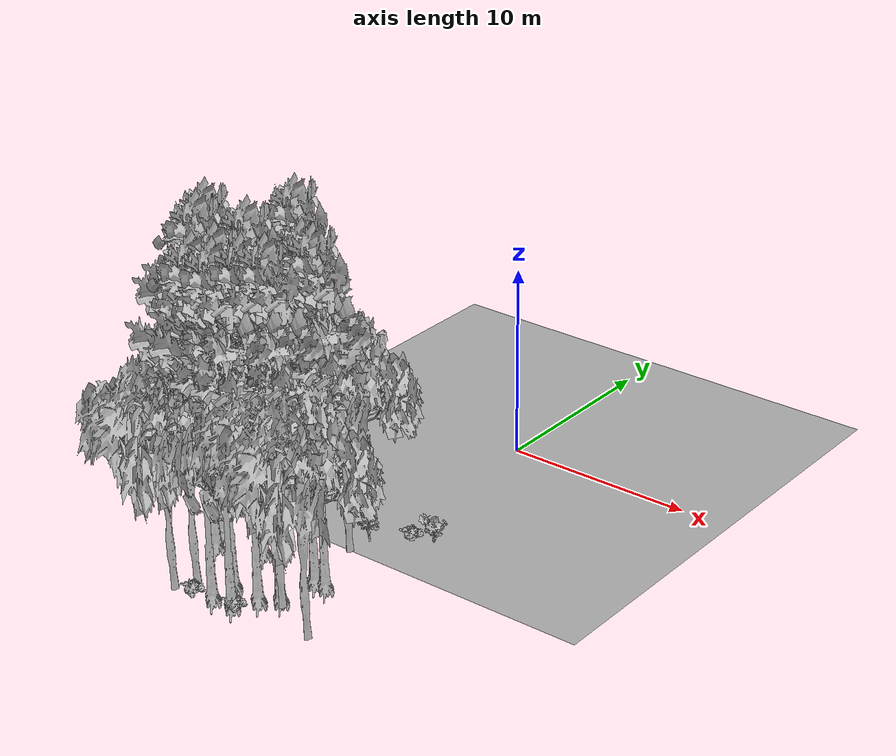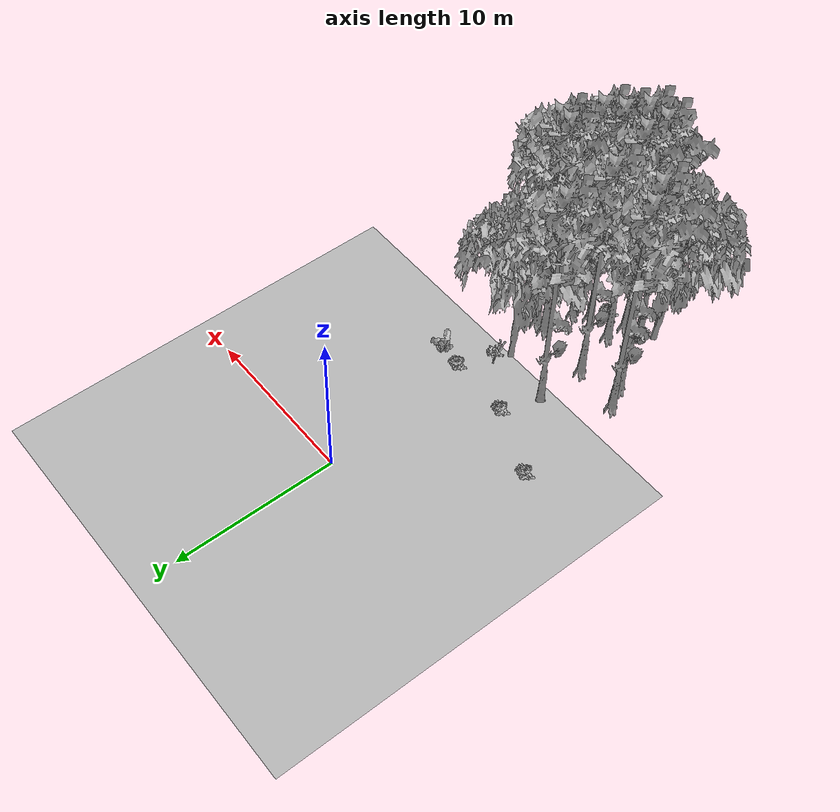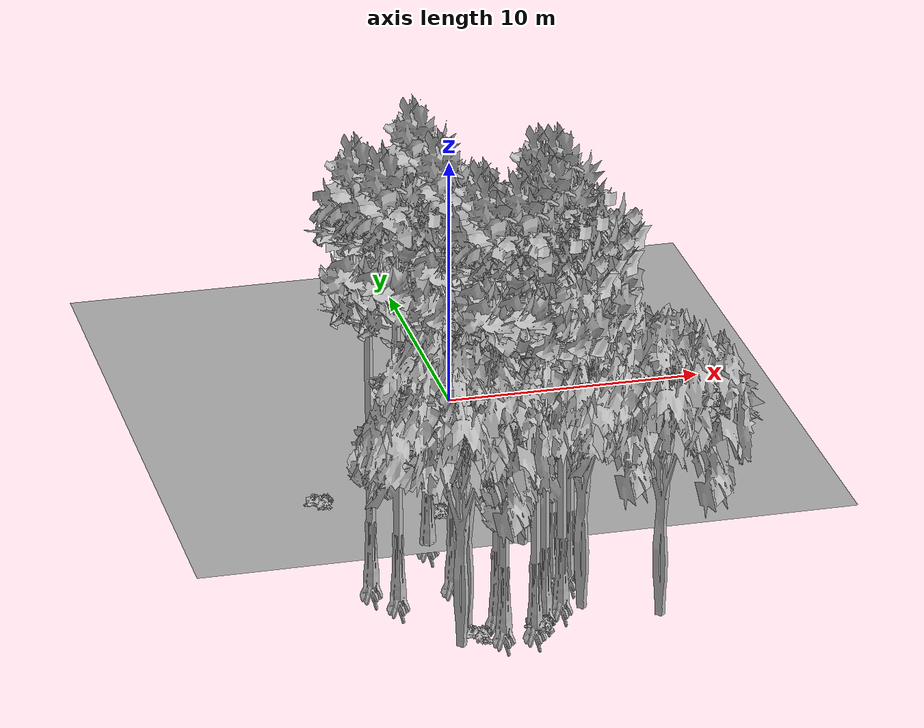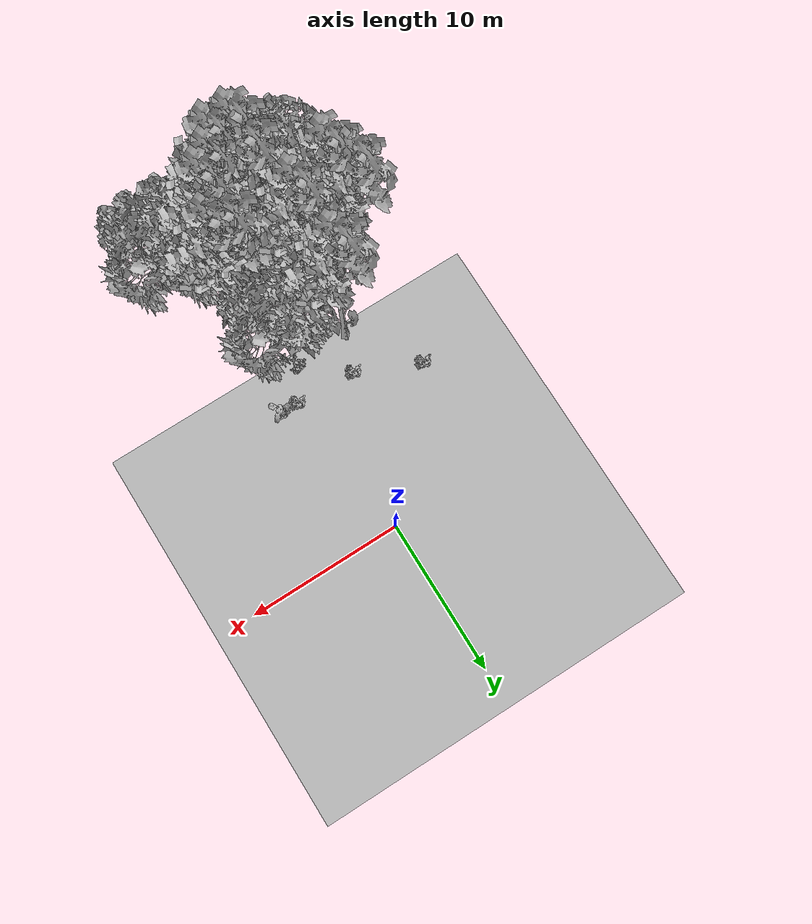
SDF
<sdf version="1.7">
 <world name="default">
  <model name="ground_plane">
   <static>1</static>
   <link name="link">
    <collision name="collision">
     <pose>-50 0 0 0 -0 0</pose>
     <geometry><plane><normal>0 0 1</normal><size>80 80</size></plane></geometry>
     <surface><contact><ode><min_depth>0.01</min_depth><max_vel>0</max_vel></ode></contact></surface>
    </collision>
    <visual name="grass">
     <cast_shadows>0</cast_shadows>
     <geometry>
      <mesh>
       <scale>0.46714285714285714 0.46714285714285714 0.1</scale>
       <uri>file://grass_plane/meshes/grass_plane.dae</uri>
      </mesh>
     </geometry>
    </visual>
   </link>
  </model>
  <model name="Tree 14">
   <static>1</static>
   <pose>0.31850519076146355 -18.160462121770394 0 1.57079 -0 0</pose>
   <link name="link">
    <collision name="collision">
     <geometry><mesh><scale>3.5 5 3.5</scale><uri>model://tree_2/meshes/tree_2.obj</uri></mesh></geometry>
    </collision>
    <visual name="visual">
     <geometry><mesh><scale>3.5 5 3.5</scale><uri>model://tree_2/meshes/tree_2.obj</uri></mesh></geometry>
    </visual>
   </link>
  </model>
  <model name="Tree 50">
   <static>1</static>
   <pose>-6.566447576985226 -14.660132560717027 0 1.57079 -0 0</pose>
   <link name="link">
    <collision name="collision">
     <geometry><mesh><scale>3.5 5 3.5</scale><uri>model://tree_9/meshes/tree_9.obj</uri></mesh></geometry>
    </collision>
    <visual name="visual">
     <geometry><mesh><scale>3.5 5 3.5</scale><uri>model://tree_9/meshes/tree_9.obj</uri></mesh></geometry>
    </visual>
   </link>
  </model>
  <model name="Tree 66">
   <static>1</static>
   <pose>-0.03785553446910228 -15.464244033058215 0 1.57079 -0 0</pose>
   <link name="link">
    <collision name="collision">
     <geometry><mesh><scale>3.5 5 3.5</scale><uri>model://tree_9/meshes/tree_9.obj</uri></mesh></geometry>
    </collision>
    <visual name="visual">
     <geometry><mesh><scale>3.5 5 3.5</scale><uri>model://tree_9/meshes/tree_9.obj</uri></mesh></geometry>
    </visual>
   </link>
  </model>
  <model name="Tree 75">
   <static>1</static>
   <pose>-0.9998907964705523 -18.21960058497708 0 1.57079 -0 0</pose>
   <link name="link">
    <collision name="collision">
     <geometry><mesh><scale>3.5 5 3.5</scale><uri>model://tree_9/meshes/tree_9.obj</uri></mesh></geometry>
    </collision>
    <visual name="visual">
     <geometry><mesh><scale>3.5 5 3.5</scale><uri>model://tree_9/meshes/tree_9.obj</uri></mesh></geometry>
    </visual>
   </link>
  </model>
  <model name="Tree 132">
   <static>1</static>
   <pose>-4.162997792082685 -19.017609218947655 0 1.57079 -0 0</pose>
   <link name="link">
    <collision name="collision">
     <geometry><mesh><scale>3.5 5 3.5</scale><uri>model://tree_2/meshes/tree_2.obj</uri></mesh></geometry>
    </collision>
    <visual name="visual">
     <geometry><mesh><scale>3.5 5 3.5</scale><uri>model://tree_2/meshes/tree_2.obj</uri></mesh></geometry>
    </visual>
   </link>
  </model>
  <model name="Tree 190">
   <static>1</static>
   <pose>-0.20459791889258838 -17.603168427992067 0 1.57079 -0 0</pose>
   <link name="link">
    <collision name="collision">
     <geometry><mesh><scale>3.5 5 3.5</scale><uri>model://tree_9/meshes/tree_9.obj</uri></mesh></geometry>
    </collision>
    <visual name="visual">
     <geometry><mesh><scale>3.5 5 3.5</scale><uri>model://tree_9/meshes/tree_9.obj</uri></mesh></geometry>
    </visual>
   </link>
  </model>
  <model name="Tree 208">
   <static>1</static>
   <pose>-5.86082627806563 -15.938121548015793 0 1.57079 -0 0</pose>
   <link name="link">
    <collision name="collision">
     <geometry><mesh><scale>3.5 5 3.5</scale><uri>model://tree_9/meshes/tree_9.obj</uri></mesh></geometry>
    </collision>
    <visual name="visual">
     <geometry><mesh><scale>3.5 5 3.5</scale><uri>model://tree_9/meshes/tree_9.obj</uri></mesh></geometry>
    </visual>
   </link>
  </model>
  <model name="Tree 241">
   <static>1</static>
   <pose>-3.7553518512939448 -11.808413275783867 0 1.57079 -0 0</pose>
   <link name="link">
    <collision name="collision">
     <geometry><mesh><scale>3.5 5 3.5</scale><uri>model://tree_9/meshes/tree_9.obj</uri></mesh></geometry>
    </collision>
    <visual name="visual">
     <geometry><mesh><scale>3.5 5 3.5</scale><uri>model://tree_9/meshes/tree_9.obj</uri></mesh></geometry>
    </visual>
   </link>
  </model>
  <model name="Tree 244">
   <static>1</static>
   <pose>-4.602725629649257 -20.02185940615444 0 1.57079 -0 0</pose>
   <link name="link">
    <collision name="collision">
     <geometry><mesh><scale>3.5 5 3.5</scale><uri>model://tree_2/meshes/tree_2.obj</uri></mesh></geometry>
    </collision>
    <visual name="visual">
     <geometry><mesh><scale>3.5 5 3.5</scale><uri>model://tree_2/meshes/tree_2.obj</uri></mesh></geometry>
    </visual>
   </link>
  </model>
  <model name="Tree 290">
   <static>1</static>
   <pose>-0.44557630544625937 -12.653210497336556 0 1.57079 -0 0</pose>
   <link name="link">
    <collision name="collision">
     <geometry><mesh><scale>3.5 5 3.5</scale><uri>model://tree_2/meshes/tree_2.obj</uri></mesh></geometry>
    </collision>
    <visual name="visual">
     <geometry><mesh><scale>3.5 5 3.5</scale><uri>model://tree_2/meshes/tree_2.obj</uri></mesh></geometry>
    </visual>
   </link>
  </model>
  <model name="Tree 327">
   <static>1</static>
   <pose>-1.6336775022799301 -19.303632322426907 0 1.57079 -0 0</pose>
   <link name="link">
    <collision name="collision">
     <geometry><mesh><scale>3.5 5 3.5</scale><uri>model://tree_9/meshes/tree_9.obj</uri></mesh></geometry>
    </collision>
    <visual name="visual">
     <geometry><mesh><scale>3.5 5 3.5</scale><uri>model://tree_9/meshes/tree_9.obj</uri></mesh></geometry>
    </visual>
   </link>
  </model>
  <model name="Tree 328">
   <static>1</static>
   <pose>0.6407817386962336 -15.508575842439623 0 1.57079 -0 0</pose>
   <link name="link">
    <collision name="collision">
     <geometry><mesh><scale>3.5 5 3.5</scale><uri>model://tree_9/meshes/tree_9.obj</uri></mesh></geometry>
    </collision>
    <visual name="visual">
     <geometry><mesh><scale>3.5 5 3.5</scale><uri>model://tree_9/meshes/tree_9.obj</uri></mesh></geometry>
    </visual>
   </link>
  </model>
  <model name="Tree 494">
   <static>1</static>
   <pose>-3.6175872291589783 -15.057493638300137 0 1.57079 -0 0</pose>
   <link name="link">
    <collision name="collision">
     <geometry><mesh><scale>3.5 5 3.5</scale><uri>model://tree_9/meshes/tree_9.obj</uri></mesh></geometry>
    </collision>
    <visual name="visual">
     <geometry><mesh><scale>3.5 5 3.5</scale><uri>model://tree_9/meshes/tree_9.obj</uri></mesh></geometry>
    </visual>
   </link>
  </model>
  <model name="Tree 507">
   <static>1</static>
   <pose>-2.7905235686503786 -19.340039637474238 0 1.57079 -0 0</pose>
   <link name="link">
    <collision name="collision">
     <geometry><mesh><scale>3.5 5 3.5</scale><uri>model://tree_9/meshes/tree_9.obj</uri></mesh></geometry>
    </collision>
    <visual name="visual">
     <geometry><mesh><scale>3.5 5 3.5</scale><uri>model://tree_9/meshes/tree_9.obj</uri></mesh></geometry>
    </visual>
   </link>
  </model>
  <model name="Tree 516">
   <static>1</static>
   <pose>2.9184371379248475 -19.371162394623383 0 1.57079 -0 0</pose>
   <link name="link">
    <collision name="collision">
     <geometry><mesh><scale>3.5 5 3.5</scale><uri>model://tree_2/meshes/tree_2.obj</uri></mesh></geometry>
    </collision>
    <visual name="visual">
     <geometry><mesh><scale>3.5 5 3.5</scale><uri>model://tree_2/meshes/tree_2.obj</uri></mesh></geometry>
    </visual>
   </link>
  </model>
  <model name="Tree 598">
   <static>1</static>
   <pose>-2.713826391802961 -18.020457215771863 0 1.57079 -0 0</pose>
   <link name="link">
    <collision name="collision">
     <geometry><mesh><scale>3.5 5 3.5</scale><uri>model://tree_9/meshes/tree_9.obj</uri></mesh></geometry>
    </collision>
    <visual name="visual">
     <geometry><mesh><scale>3.5 5 3.5</scale><uri>model://tree_9/meshes/tree_9.obj</uri></mesh></geometry>
    </visual>
   </link>
  </model>
  <model name="Bush 12">
   <static>1</static>
   <pose>-3.809362808833434 -19.589996849671046 0 1.57079 -0 0</pose>
   <link name="link">
    <collision name="collision">
     <geometry><mesh><scale>2 2 2</scale><uri>model://bush_2/meshes/bush_2.obj</uri></mesh></geometry>
     <surface><contact><collide_without_contact>false</collide_without_contact></contact></surface>
    </collision>
    <visual name="visual">
     <geometry><mesh><scale>2 2 2</scale><uri>model://bush_2/meshes/bush_2.obj</uri></mesh></geometry>
    </visual>
   </link>
  </model>
  <model name="Bush 167">
   <static>1</static>
   <pose>1.0342017342796055 -9.763388649079026 0 1.57079 -0 0</pose>
   <link name="link">
    <collision name="collision">
     <geometry><mesh><scale>2 2 2</scale><uri>model://bush_2/meshes/bush_2.obj</uri></mesh></geometry>
     <surface><contact><collide_without_contact>false</collide_without_contact></contact></surface>
    </collision>
    <visual name="visual">
     <geometry><mesh><scale>2 2 2</scale><uri>model://bush_2/meshes/bush_2.obj</uri></mesh></geometry>
    </visual>
   </link>
  </model>
  <model name="Bush 267">
   <static>1</static>
   <pose>-2.9177602296459426 -9.58794110300569 0 1.57079 -0 0</pose>
   <link name="link">
    <collision name="collision">
     <geometry><mesh><scale>2 2 2</scale><uri>model://bush_2/meshes/bush_2.obj</uri></mesh></geometry>
     <surface><contact><collide_without_contact>false</collide_without_contact></contact></surface>
    </collision>
    <visual name="visual">
     <geometry><mesh><scale>2 2 2</scale><uri>model://bush_2/meshes/bush_2.obj</uri></mesh></geometry>
    </visual>
   </link>
  </model>
  <model name="Bush 302">
   <static>1</static>
   <pose>-6.957822380865473 -7.819125842895488 0 1.57079 -0 0</pose>
   <link name="link">
    <collision name="collision">
     <geometry><mesh><scale>2 2 2</scale><uri>model://bush_2/meshes/bush_2.obj</uri></mesh></geometry>
     <surface><contact><collide_without_contact>false</collide_without_contact></contact></surface>
    </collision>
    <visual name="visual">
     <geometry><mesh><scale>2 2 2</scale><uri>model://bush_2/meshes/bush_2.obj</uri></mesh></geometry>
    </visual>
   </link>
  </model>
  <model name="Bush 422">
   <static>1</static>
   <pose>-1.4553313864372015 -19.31973782186029 0 1.57079 -0 0</pose>
   <link name="link">
    <collision name="collision">
     <geometry><mesh><scale>2 2 2</scale><uri>model://bush_2/meshes/bush_2.obj</uri></mesh></geometry>
     <surface><contact><collide_without_contact>false</collide_without_contact></contact></surface>
    </collision>
    <visual name="visual">
     <geometry><mesh><scale>2 2 2</scale><uri>model://bush_2/meshes/bush_2.obj</uri></mesh></geometry>
    </visual>
   </link>
  </model>
  <model name="Bush 598">
   <static>1</static>
   <pose>2.2931716876917037 -9.593044554494028 0 1.57079 -0 0</pose>
   <link name="link">
    <collision name="collision">
     <geometry><mesh><scale>2 2 2</scale><uri>model://bush_0/meshes/bush_0.obj</uri></mesh></geometry>
     <surface><contact><collide_without_contact>false</collide_without_contact></contact></surface>
    </collision>
    <visual name="visual">
     <geometry><mesh><scale>2 2 2</scale><uri>model://bush_0/meshes/bush_0.obj</uri></mesh></geometry>
    </visual>
   </link>
  </model>
  <model name="Bush 601">
   <static>1</static>
   <pose>-0.166811275477599 -11.403722273969343 0 1.57079 -0 0</pose>
   <link name="link">
    <collision name="collision">
     <geometry><mesh><scale>2 2 2</scale><uri>model://bush_5/meshes/bush_5.obj</uri></mesh></geometry>
     <surface><contact><collide_without_contact>false</collide_without_contact></contact></surface>
    </collision>
    <visual name="visual">
     <geometry><mesh><scale>2 2 2</scale><uri>model://bush_5/meshes/bush_5.obj</uri></mesh></geometry>
    </visual>
   </link>
  </model>
 </world>
</sdf>
